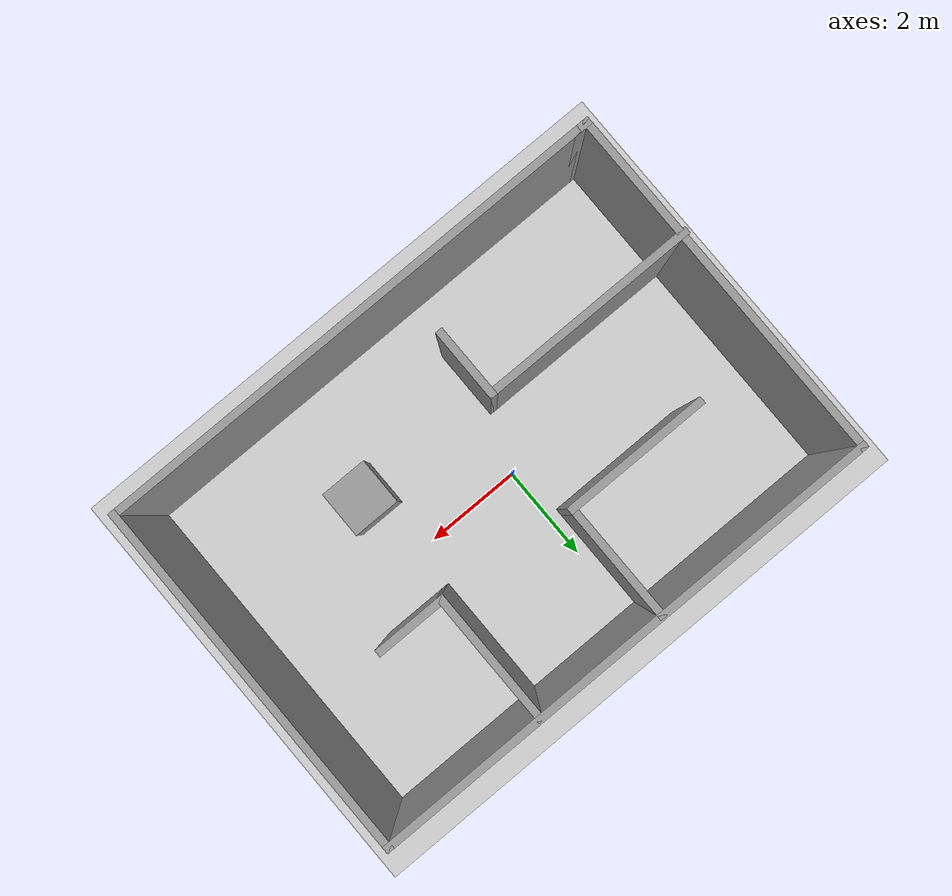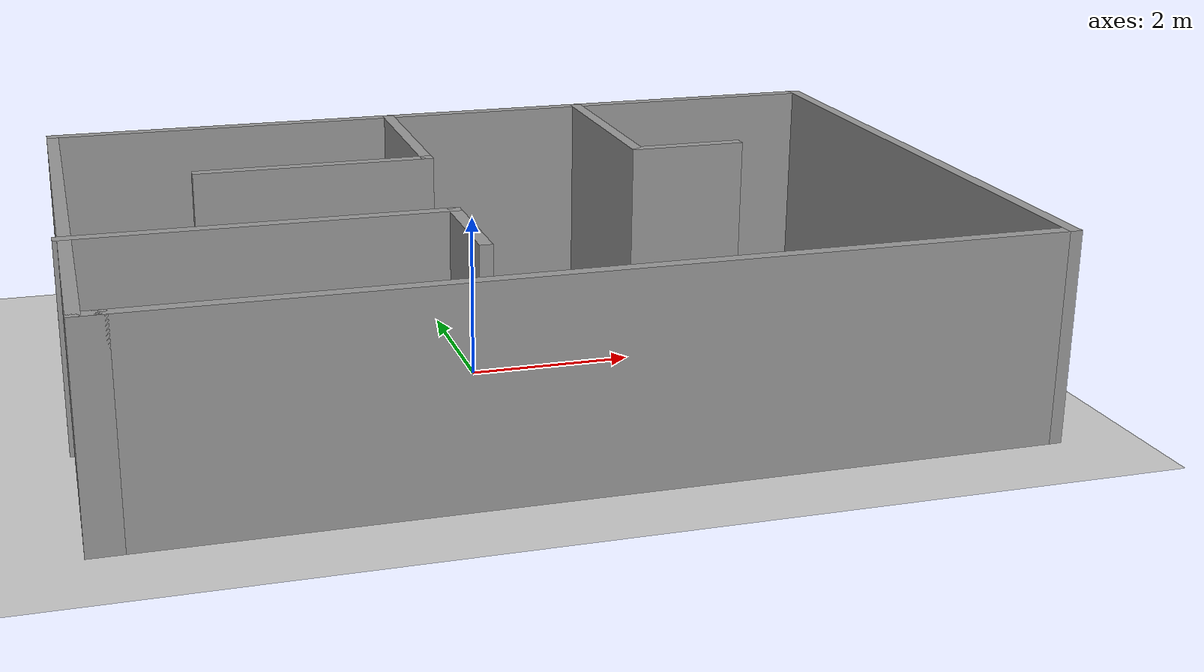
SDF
<sdf version="1.7">
 <world name="default">
  <light name="sun" type="directional">
   <pose>0 0 10 0 -0 0</pose>
   <diffuse>0.8 0.8 0.8 1</diffuse>
   <specular>0.2 0.2 0.2 1</specular>
   <attenuation>
    <range>1000</range>
    <constant>0.9</constant>
    <linear>0.01</linear>
    <quadratic>0.001</quadratic>
   </attenuation>
   <direction>-0.5 0.1 -0.9</direction>
   <spot><inner_angle>0</inner_angle><outer_angle>0</outer_angle><falloff>0</falloff></spot>
  </light>
  <model name="ground_plane">
   <static>1</static>
   <link name="link">
    <collision name="collision">
     <geometry><plane><normal>0 0 1</normal><size>100 100</size></plane></geometry>
     <surface><friction><ode><mu>100</mu><mu2>50</mu2></ode></friction></surface>
    </collision>
    <visual name="visual">
     <cast_shadows>0</cast_shadows>
     <geometry><plane><normal>0 0 1</normal><size>100 100</size></plane></geometry>
     <material>
      <script><uri>file://media/materials/scripts/gazebo.material</uri><name>Gazebo/Grey</name></script>
     </material>
    </visual>
   </link>
  </model>
  <gravity>0 0 -9.8</gravity>
  <magnetic_field>6e-06 2.3e-05 -4.2e-05</magnetic_field>
  <atmosphere type="adiabatic"/>
  <physics type="ode">
   <max_step_size>0.001</max_step_size>
   <real_time_factor>1</real_time_factor>
   <real_time_update_rate>1000</real_time_update_rate>
  </physics>
  <scene><ambient>0.4 0.4 0.4 1</ambient><background>0.7 0.7 0.7 1</background><shadows>1</shadows></scene>
  <audio><device>default</device></audio>
  <spherical_coordinates>
   <surface_model>EARTH_WGS84</surface_model>
   <latitude_deg>0</latitude_deg>
   <longitude_deg>0</longitude_deg>
   <elevation>0</elevation>
   <heading_deg>0</heading_deg>
  </spherical_coordinates>
  <model name="room">
   <pose>0.458455 -0.133859 0 0 -0 0</pose>
   <link name="Wall_10">
    <collision name="Wall_10_Collision">
     <geometry><box><size>0.4 0.15 2.5</size></box></geometry>
     <pose>0 0 1.25 0 -0 0</pose>
    </collision>
    <visual name="Wall_10_Visual">
     <pose>0 0 1.25 0 -0 0</pose>
     <geometry><box><size>0.4 0.15 2.5</size></box></geometry>
     <material>
      <script><uri>file://media/materials/scripts/gazebo.material</uri><name>Gazebo/Grey</name></script>
      <ambient>1 1 1 1</ambient>
     </material>
     <meta><layer>0</layer></meta>
    </visual>
    <pose>-5.14915 -3.675 0 0 -0 0</pose>
   </link>
   <link name="Wall_12">
    <collision name="Wall_12_Collision">
     <geometry><box><size>2.5 0.15 2.5</size></box></geometry>
     <pose>0 0 1.25 0 -0 0</pose>
    </collision>
    <visual name="Wall_12_Visual">
     <pose>0 0 1.25 0 -0 0</pose>
     <geometry><box><size>2.5 0.15 2.5</size></box></geometry>
     <material>
      <script><uri>file://media/materials/scripts/gazebo.material</uri><name>Gazebo/Grey</name></script>
      <ambient>1 1 1 1</ambient>
     </material>
     <meta><layer>0</layer></meta>
    </visual>
    <pose>-0.760071 2.47134 0 0 -0 -1.5708</pose>
   </link>
   <link name="Wall_13">
    <collision name="Wall_13_Collision">
     <geometry><box><size>3 0.15 2.5</size></box></geometry>
     <pose>0 0 1.25 0 -0 0</pose>
    </collision>
    <visual name="Wall_13_Visual">
     <pose>0 0 1.25 0 -0 0</pose>
     <geometry><box><size>3 0.15 2.5</size></box></geometry>
     <material>
      <script><uri>file://media/materials/scripts/gazebo.material</uri><name>Gazebo/Grey</name></script>
      <ambient>1 1 1 1</ambient>
     </material>
     <meta><layer>0</layer></meta>
    </visual>
    <pose>-2.18507 1.29634 0 0 -0 3.14159</pose>
   </link>
   <link name="Wall_15">
    <collision name="Wall_15_Collision">
     <geometry><box><size>4.5 0.15 2.5</size></box></geometry>
     <pose>0 0 1.25 0 -0 0</pose>
    </collision>
    <visual name="Wall_15_Visual">
     <pose>0 0 1.25 0 -0 0</pose>
     <geometry><box><size>4.5 0.15 2.5</size></box></geometry>
     <material>
      <script><uri>file://media/materials/scripts/gazebo.material</uri><name>Gazebo/Grey</name></script>
      <ambient>1 1 1 1</ambient>
     </material>
     <meta><layer>0</layer></meta>
    </visual>
    <pose>-3.15085 -1.12058 0 0 -0 0</pose>
   </link>
   <link name="Wall_16">
    <collision name="Wall_16_Collision">
     <geometry><box><size>1.5 0.15 2.5</size></box></geometry>
     <pose>0 0 1.25 0 -0 0</pose>
    </collision>
    <visual name="Wall_16_Visual">
     <pose>0 0 1.25 0 -0 0</pose>
     <geometry><box><size>1.5 0.15 2.5</size></box></geometry>
     <material>
      <script><uri>file://media/materials/scripts/gazebo.material</uri><name>Gazebo/Grey</name></script>
      <ambient>1 1 1 1</ambient>
     </material>
     <meta><layer>0</layer></meta>
    </visual>
    <pose>-0.975852 -1.79558 0 0 -0 -1.5708</pose>
   </link>
   <link name="Wall_18">
    <collision name="Wall_18_Collision">
     <geometry><box><size>2.75 0.15 2.5</size></box></geometry>
     <pose>0 0 1.25 0 -0 0</pose>
    </collision>
    <visual name="Wall_18_Visual">
     <pose>0 0 1.25 0 -0 0</pose>
     <geometry><box><size>2.75 0.15 2.5</size></box></geometry>
     <material>
      <script><uri>file://media/materials/scripts/gazebo.material</uri><name>Gazebo/Grey</name></script>
      <ambient>1 1 1 1</ambient>
     </material>
     <meta><layer>0</layer></meta>
    </visual>
    <pose>1.95526 2.34634 0 0 -0 -1.5708</pose>
   </link>
   <link name="Wall_19">
    <collision name="Wall_19_Collision">
     <geometry><box><size>1.5 0.15 2.5</size></box></geometry>
     <pose>0 0 1.25 0 -0 0</pose>
    </collision>
    <visual name="Wall_19_Visual">
     <pose>0 0 1.25 0 -0 0</pose>
     <geometry><box><size>1.5 0.15 2.5</size></box></geometry>
     <material>
      <script><uri>file://media/materials/scripts/gazebo.material</uri><name>Gazebo/Grey</name></script>
      <ambient>1 1 1 1</ambient>
     </material>
     <meta><layer>0</layer></meta>
    </visual>
    <pose>2.63026 1.04634 0 0 -0 0</pose>
   </link>
   <link name="Wall_4">
    <collision name="Wall_4_Collision">
     <geometry><box><size>10.5 0.15 2.5</size></box></geometry>
     <pose>0 0 1.25 0 -0 0</pose>
    </collision>
    <visual name="Wall_4_Visual">
     <pose>0 0 1.25 0 -0 0</pose>
     <geometry><box><size>10.5 0.15 2.5</size></box></geometry>
     <material>
      <script><uri>file://media/materials/scripts/gazebo.material</uri><name>Gazebo/Grey</name></script>
      <ambient>1 1 1 1</ambient>
     </material>
     <meta><layer>0</layer></meta>
    </visual>
    <pose>0.150852 -3.675 0 0 -0 0</pose>
   </link>
   <link name="Wall_5">
    <collision name="Wall_5_Collision">
     <geometry><box><size>7.5 0.15 2.5</size></box></geometry>
     <pose>0 0 1.25 0 -0 0</pose>
    </collision>
    <visual name="Wall_5_Visual">
     <pose>0 0 1.25 0 -0 0</pose>
     <geometry><box><size>7.5 0.15 2.5</size></box></geometry>
     <material>
      <script><uri>file://media/materials/scripts/gazebo.material</uri><name>Gazebo/Grey</name></script>
      <ambient>1 1 1 1</ambient>
     </material>
     <meta><layer>0</layer></meta>
    </visual>
    <pose>5.32585 0 0 0 -0 1.5708</pose>
   </link>
   <link name="Wall_8">
    <collision name="Wall_8_Collision">
     <geometry><box><size>10.75 0.15 2.5</size></box></geometry>
     <pose>0 0 1.25 0 -0 0</pose>
    </collision>
    <visual name="Wall_8_Visual">
     <pose>0 0 1.25 0 -0 0</pose>
     <geometry><box><size>10.75 0.15 2.5</size></box></geometry>
     <material>
      <script><uri>file://media/materials/scripts/gazebo.material</uri><name>Gazebo/Grey</name></script>
      <ambient>1 1 1 1</ambient>
     </material>
     <meta><layer>0</layer></meta>
    </visual>
    <pose>0.025852 3.675 0 0 -0 3.14159</pose>
   </link>
   <link name="Wall_9">
    <collision name="Wall_9_Collision">
     <geometry><box><size>7.5 0.15 2.5</size></box></geometry>
     <pose>0 0 1.25 0 -0 0</pose>
    </collision>
    <visual name="Wall_9_Visual">
     <pose>0 0 1.25 0 -0 0</pose>
     <geometry><box><size>7.5 0.15 2.5</size></box></geometry>
     <material>
      <script><uri>file://media/materials/scripts/gazebo.material</uri><name>Gazebo/Grey</name></script>
      <ambient>1 1 1 1</ambient>
     </material>
     <meta><layer>0</layer></meta>
    </visual>
    <pose>-5.27415 0 0 0 -0 -1.5708</pose>
   </link>
   <static>1</static>
  </model>
  <model name="unit_box">
   <pose>2.50848 -1.47348 0.499995 0 -1e-05 0</pose>
   <link name="link">
    <inertial>
     <mass>1</mass>
     <inertia>
      <ixx>0.166667</ixx>
      <ixy>0</ixy>
      <ixz>0</ixz>
      <iyy>0.166667</iyy>
      <iyz>0</iyz>
      <izz>0.166667</izz>
     </inertia>
    </inertial>
    <collision name="collision"><geometry><box><size>1 1 1</size></box></geometry></collision>
    <visual name="visual">
     <geometry><box><size>1 1 1</size></box></geometry>
     <material>
      <script><name>Gazebo/Grey</name><uri>file://media/materials/scripts/gazebo.material</uri></script>
     </material>
    </visual>
   </link>
  </model>
 </world>
</sdf>
